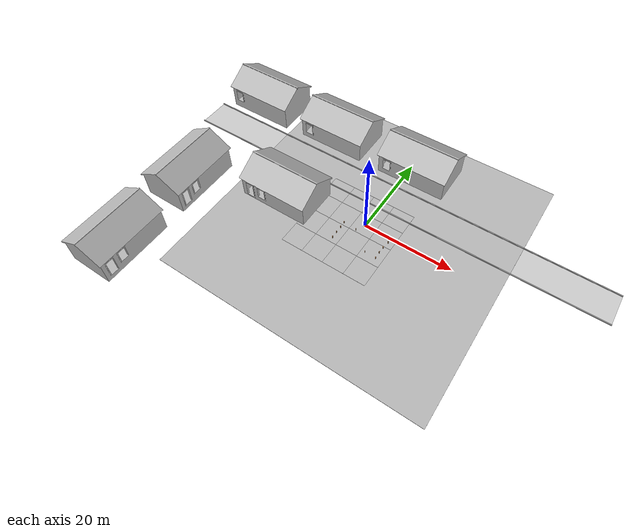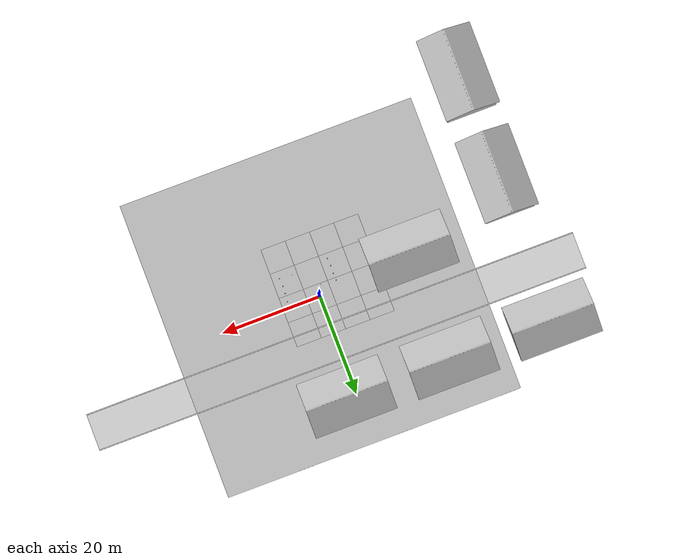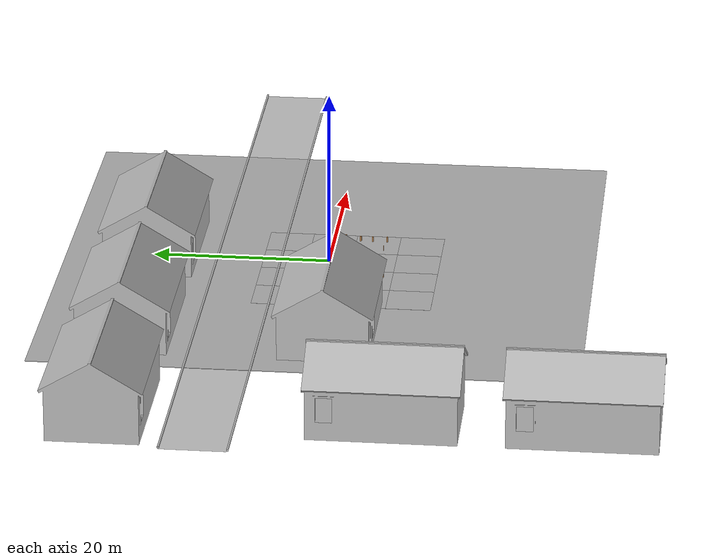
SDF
<sdf version="1.6">
 <world name="default">
  <light type="directional" name="sun">
   <pose>0.0 0.0 1000 -0.35 -0.5 0</pose>
   <diffuse>0.8 0.8 0.8 1</diffuse>
   <specular>0.2 0.2 0.2 1</specular>
   <attenuation>
    <range>1000</range>
    <constant>0.9</constant>
    <linear>0.01</linear>
    <quadratic>0.001</quadratic>
   </attenuation>
   <direction>-0.5 0.1 -0.9</direction>
  </light>
  <light type="spot" name="spot1">
   <pose>0 10 9 -0.1 0 0</pose>
   <diffuse>1 0.8431372549019608 0.4588235294117647 1</diffuse>
   <specular>.2 .2 .2 1</specular>
   <attenuation>
    <range>20</range>
    <linear>0.01</linear>
    <constant>0.2</constant>
    <quadratic>0.0</quadratic>
   </attenuation>
   <direction>0 0 -1</direction>
   <spot><inner_angle>0.11</inner_angle><outer_angle>20</outer_angle><falloff>40</falloff></spot>
   <cast_shadows>false</cast_shadows>
  </light>
  <light type="spot" name="spot2">
   <pose>-20 10 9 -0.1 0 0</pose>
   <diffuse>1 0.8431372549019608 0.4588235294117647 1</diffuse>
   <specular>.2 .2 .2 1</specular>
   <attenuation>
    <range>20</range>
    <linear>0.01</linear>
    <constant>0.2</constant>
    <quadratic>0.0</quadratic>
   </attenuation>
   <direction>0 0 -1</direction>
   <spot><inner_angle>0.11</inner_angle><outer_angle>20</outer_angle><falloff>40</falloff></spot>
   <cast_shadows>false</cast_shadows>
  </light>
  <light type="spot" name="spot3">
   <pose>-40 10 9 -0.1 0 0</pose>
   <diffuse>1 0.8431372549019608 0.4588235294117647 1</diffuse>
   <specular>.2 .2 .2 1</specular>
   <attenuation>
    <range>20</range>
    <linear>0.01</linear>
    <constant>0.2</constant>
    <quadratic>0.0</quadratic>
   </attenuation>
   <direction>0 0 -1</direction>
   <spot><inner_angle>0.11</inner_angle><outer_angle>20</outer_angle><falloff>40</falloff></spot>
   <cast_shadows>false</cast_shadows>
  </light>
  <gravity>0 0 -9.8</gravity>
  <magnetic_field>6e-06 2.3e-05 -4.2e-05</magnetic_field>
  <atmosphere type="adiabatic"/>
  <physics name="default_physics" default="0" type="ode">
   <dart><collision_detector>bullet</collision_detector></dart>
   <max_step_size>0.005</max_step_size>
   <real_time_factor>1</real_time_factor>
   <real_time_update_rate>200</real_time_update_rate>
  </physics>
  <scene>
   <ambient>0.9 0.9 0.9 1</ambient>
   <sky><clouds><speed>8</speed></clouds></sky>
   <grid>false</grid>
   <background>0.7 0.7 0.7 1</background>
   <shadows>1</shadows>
  </scene>
  <spherical_coordinates>
   <surface_model>EARTH_WGS84</surface_model>
   <latitude_deg>0</latitude_deg>
   <longitude_deg>0</longitude_deg>
   <elevation>0</elevation>
   <heading_deg>0</heading_deg>
  </spherical_coordinates>
  <include><uri>model://runway</uri><pose>0 9.15 0.05 0 0 1.571428571</pose><static>true</static></include>
  <include>
   <uri>model://my_ground_plane</uri>
   <pose>0 0 0.03 0 0 0</pose>
   <name>ground_00</name>
   <static>true</static>
  </include>
  <include>
   <uri>model://my_ground_plane</uri>
   <pose>-5 0 0.03 0 0 0</pose>
   <name>ground_01</name>
   <static>true</static>
  </include>
  <include>
   <uri>model://my_ground_plane</uri>
   <pose>0 -5 0.03 0 0 0</pose>
   <name>ground_02</name>
   <static>true</static>
  </include>
  <include>
   <uri>model://my_ground_plane</uri>
   <pose>5 0 0.03 0 0 0</pose>
   <name>ground_03</name>
   <static>true</static>
  </include>
  <include>
   <uri>model://my_ground_plane</uri>
   <pose>0 5 0.03 0 0 0</pose>
   <name>ground_04</name>
   <static>true</static>
  </include>
  <include>
   <uri>model://my_ground_plane</uri>
   <pose>-5 -5 0.03 0 0 0</pose>
   <name>ground_05</name>
   <static>true</static>
  </include>
  <include>
   <uri>model://my_ground_plane</uri>
   <pose>5 -5 0.03 0 0 0</pose>
   <name>ground_06</name>
   <static>true</static>
  </include>
  <include>
   <uri>model://my_ground_plane</uri>
   <pose>-10 0 0.03 0 0 0</pose>
   <name>ground_07</name>
   <static>true</static>
  </include>
  <include>
   <uri>model://my_ground_plane</uri>
   <pose>5 5 0.03 0 0 0</pose>
   <name>ground_08</name>
   <static>true</static>
  </include>
  <include>
   <uri>model://my_ground_plane</uri>
   <pose>-10 5 0.03 0 0 0</pose>
   <name>ground_09</name>
   <static>true</static>
  </include>
  <include>
   <uri>model://my_ground_plane</uri>
   <pose>-5 5 0.03 0 0 0</pose>
   <name>ground_10</name>
   <static>true</static>
  </include>
  <include>
   <uri>model://my_ground_plane</uri>
   <pose>-10 -10 0.03 0 0 0</pose>
   <name>ground_11</name>
   <static>true</static>
  </include>
  <include>
   <uri>model://my_ground_plane</uri>
   <pose>-5 -10 0.03 0 0 0</pose>
   <name>ground_12</name>
   <static>true</static>
  </include>
  <include>
   <uri>model://my_ground_plane</uri>
   <pose>0 -10 0.03 0 0 0</pose>
   <name>ground_13</name>
   <static>true</static>
  </include>
  <include>
   <uri>model://my_ground_plane</uri>
   <pose>5 -10 0.03 0 0 0</pose>
   <name>ground_14</name>
   <static>true</static>
  </include>
  <include>
   <uri>model://my_ground_plane</uri>
   <pose>-10 -5 0.03 0 0 0</pose>
   <name>ground_15</name>
   <static>true</static>
  </include>
  <include><uri>model://my_grass_plane</uri><pose>0 0 -0.05 0 0 0</pose><static>true</static></include>
  <include>
   <uri>model://small_peg</uri>
   <pose>3.474487 -5.820211 0 0 0 0</pose>
   <name>small_peg_02</name>
   <static>true</static>
  </include>
  <include>
   <uri>model://small_peg</uri>
   <pose>-1.042011 -2.181731 0 0 0 0</pose>
   <name>small_peg_01</name>
   <static>true</static>
  </include>
  <include>
   <uri>model://peg</uri>
   <pose>6.220254 -1.292501 0 0 0 0</pose>
   <name>peg_01</name>
   <static>true</static>
  </include>
  <include>
   <uri>model://peg</uri>
   <pose>-4.078598 -1.934470 0 0 0 0</pose>
   <name>peg_02</name>
   <static>true</static>
  </include>
  <include>
   <uri>model://peg</uri>
   <pose>-4.033242 -3.331391 0 0 0 0</pose>
   <name>peg_03</name>
   <static>true</static>
  </include>
  <include>
   <uri>model://peg</uri>
   <pose>6.010706 -2.987494 0 0 0 0</pose>
   <name>peg_04</name>
   <static>true</static>
  </include>
  <include>
   <uri>model://peg</uri>
   <pose>5.974026 -4.387251 0 0 0 0</pose>
   <name>peg_05</name>
   <static>true</static>
  </include>
  <include>
   <uri>model://peg</uri>
   <pose>-4.092475 -4.913312 0 0 0 0</pose>
   <name>peg_06</name>
   <static>true</static>
  </include>
  <include>
   <uri>model://peg</uri>
   <pose>-4.004834 -6.444205 0 0 0 0</pose>
   <name>peg_07</name>
   <static>true</static>
  </include>
  <include>
   <uri>model://peg</uri>
   <pose>6.035331 -6.000935 0 0 0 0</pose>
   <name>peg_08</name>
   <static>true</static>
  </include>
  <include>
   <uri>model://guide</uri>
   <pose>0 5.5 0.1 0 0 1.571428571</pose>
   <name>guide_01</name>
   <static>true</static>
  </include>
  <include>
   <uri>model://guide</uri>
   <pose>0 12.75 0.1 0 0 1.571428571</pose>
   <name>guide_02</name>
   <static>true</static>
  </include>
  <include>
   <uri>model://barn_collision</uri>
   <pose>-19 -2 0.3 0 0 0</pose>
   <name>barn_00</name>
   <static>true</static>
  </include>
  <include>
   <uri>model://barn_collision</uri>
   <pose>-19 20 0.3 0 0 3.1427</pose>
   <name>barn_01</name>
   <static>true</static>
  </include>
  <include>
   <uri>model://barn_collision</uri>
   <pose>-40 20 0.3 0 0 3.1427</pose>
   <name>barn_02</name>
   <static>true</static>
  </include>
  <include>
   <uri>model://barn_collision</uri>
   <pose>2 20 0.3 0 0 3.1427</pose>
   <name>barn_03</name>
   <static>true</static>
  </include>
  <include>
   <uri>model://barn_collision</uri>
   <pose>-40 -10 0.3 0 0 1.571428571</pose>
   <name>barn_04</name>
   <static>true</static>
  </include>
  <include>
   <uri>model://barn_collision</uri>
   <pose>-40 -31 0.3 0 0 1.571428571</pose>
   <name>barn_05</name>
   <static>true</static>
  </include>
 </world>
</sdf>

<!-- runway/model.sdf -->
<sdf version="1.4">
  <model name="ground_plane">
    <static>true</static>
    <link name="link">
      <pose>0 0 0 0 0 0</pose>
      <collision name="collision">
        <geometry>
          <plane>
            <normal>0 0 1</normal>
            <size>7.1 50</size>
          </plane>
        </geometry>
        <surface>
          <friction>
            <ode>
              <mu>1</mu>
              <mu2>1</mu2>
            </ode>
          </friction>
        </surface>
      </collision>

      <visual name="runway">
        <cast_shadows>false</cast_shadows>
        <geometry>
          <plane>
            <normal>0 0 1</normal>
            <size>7.1 100</size>
          </plane>
        </geometry>
        <material>
          <script>
            <uri>file://media/materials/scripts/gazebo.material</uri>
            <name>Gazebo/Motorway</name>
          </script>
        </material>
      </visual>
    </link>
  </model>
</sdf>

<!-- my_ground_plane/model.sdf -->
<sdf version="1.4">
   <model name="my_ground_plane">
      <static>true</static>
      <link name="link">
         <collision name="collision">
            <geometry>
               <plane>
                  <normal>0 0 1</normal>
                  <size>5 5</size>
               </plane>
            </geometry>
            <surface>
               <friction>
                  <ode>
                     <mu>100</mu>
                     <mu2>50</mu2>
                  </ode>
               </friction>
            </surface>
         </collision>
         <visual name="visual">
            <cast_shadows>false</cast_shadows>
            <geometry>
               <plane>
                  <normal>0 0 1</normal>
                  <size>5 5</size>
               </plane>
            </geometry>
            <material>
               <script>
                  <uri>model://my_ground_plane/materials/scripts</uri>
                  <uri>model://my_ground_plane/materials/textures/</uri>
                  <name>MyGroundPlane/Image</name>
               </script>
            </material>
         </visual>
      </link>
   </model>
</sdf>

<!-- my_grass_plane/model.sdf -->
<sdf version="1.4">
   <model name="my_grass_plane">
      <static>true</static>
      <link name="link">
         <collision name="collision">
            <geometry>
               <plane>
                  <normal>0 0 1</normal>
                  <size>60 60</size>
               </plane>
            </geometry>
            <surface>
               <friction>
                  <ode>
                     <mu>100</mu>
                     <mu2>50</mu2>
                  </ode>
               </friction>
            </surface>
         </collision>
         <visual name="visual">
            <cast_shadows>false</cast_shadows>
            <geometry>
               <plane>
                  <normal>0 0 1</normal>
                  <size>60 60</size>
               </plane>
            </geometry>
            <material>
               <script>
                  <uri>model://my_grass_plane/materials/scripts</uri>
                  <uri>model://my_grass_plane/materials/textures/</uri>
                  <name>MyGrassPlane/Image</name>
               </script>
            </material>
         </visual>
      </link>
   </model>
</sdf>

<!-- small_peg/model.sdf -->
<sdf version="1.5">
  <model name="small_peg">
    <link name="link">
      <pose>0 0 0.35 0 0 0</pose>
      <inertial>
        <mass>0.0175</mass>
        <inertia>
          <ixx>9.749231770833334e-06</ixx>
          <ixy>0</ixy>
          <ixz>0</ixz>
          <iyy>9.749231770833334e-06</iyy>
          <iyz>0</iyz>
          <izz>8.317968750000001e-07</izz>
        </inertia>
      </inertial>

      <collision name="collision">
        <geometry>
          <cylinder>
            <radius> 0.05 </radius>
            <length> 0.6 </length>
          </cylinder>
        </geometry>
        <surface>
          <contact>
            <!-- Red Pine coefficients for longitudinal axis of the wood
                 according to:
                 http://www.fpl.fs.fed.us/documnts/fplgtr/fplgtr113/ch04.pdf -->
            <poissons_ratio>0.347</poissons_ratio>
            <elastic_modulus>8.8e+09</elastic_modulus>
            <ode>
              <kp>100000</kp>
              <kd>100</kd>
              <max_vel>100.0</max_vel>
              <min_depth>0.001</min_depth>
            </ode>
          </contact>
          <friction>
            <torsional>
              <coefficient>1.0</coefficient>
              <use_patch_radius>0</use_patch_radius>
              <surface_radius>0.01</surface_radius>
            </torsional>
          </friction>
        </surface>
      </collision>

      <visual name="visual">
        <geometry>
          <cylinder>
            <radius> 0.05 </radius>
            <length> 0.6 </length>
          </cylinder>
        </geometry>
        <material>
          <script>
            <uri>file://media/materials/scripts/gazebo.material</uri>
            <name>Gazebo/Wood</name>
          </script>
        </material>
      </visual>

    </link>
  </model>
</sdf>

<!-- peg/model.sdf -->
<sdf version="1.5">
  <model name="peg">
    <link name="link">
      <pose>0 0 0.35 0 0 0</pose>
      <inertial>
        <mass>0.0175</mass>
        <inertia>
          <ixx>9.749231770833334e-06</ixx>
          <ixy>0</ixy>
          <ixz>0</ixz>
          <iyy>9.749231770833334e-06</iyy>
          <iyz>0</iyz>
          <izz>8.317968750000001e-07</izz>
        </inertia>
      </inertial>

      <collision name="collision">
        <geometry>
          <cylinder>
            <radius> 0.1 </radius>
            <length> 0.6 </length>
          </cylinder>
        </geometry>
        <surface>
          <contact>
            <!-- Red Pine coefficients for longitudinal axis of the wood
                 according to:
                 http://www.fpl.fs.fed.us/documnts/fplgtr/fplgtr113/ch04.pdf -->
            <poissons_ratio>0.347</poissons_ratio>
            <elastic_modulus>8.8e+09</elastic_modulus>
            <ode>
              <kp>100000</kp>
              <kd>100</kd>
              <max_vel>100.0</max_vel>
              <min_depth>0.001</min_depth>
            </ode>
          </contact>
          <friction>
            <torsional>
              <coefficient>1.0</coefficient>
              <use_patch_radius>0</use_patch_radius>
              <surface_radius>0.01</surface_radius>
            </torsional>
          </friction>
        </surface>
      </collision>

      <visual name="visual">
        <geometry>
          <cylinder>
            <radius> 0.1 </radius>
            <length> 0.6 </length>
          </cylinder>
        </geometry>
        <material>
          <script>
            <uri>file://media/materials/scripts/gazebo.material</uri>
            <name>Gazebo/Wood</name>
          </script>
        </material>
      </visual>

    </link>
  </model>
</sdf>

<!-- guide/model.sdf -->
<sdf version="1.4">
  <model name="guide">
    <link name="link">
      <pose>0 0 0 0 0 0</pose>
      <inertial>
        <mass>2.0</mass>
        <inertia>
          <ixx>1</ixx>
          <ixy>0</ixy>
          <ixz>0</ixz>
          <iyy>1</iyy>
          <iyz>0</iyz>
          <izz>1</izz>
        </inertia>
      </inertial>

      <collision name="collision">
        <geometry>
          <box>
            <size>0.2 100.0 0.2</size>
          </box>
        </geometry>
        <surface>
          <contact>
            <!-- Red Pine coefficients for longitudinal axis of the wood
                 according to:
                 http://www.fpl.fs.fed.us/documnts/fplgtr/fplgtr113/ch04.pdf -->
            <poissons_ratio>0.347</poissons_ratio>
            <elastic_modulus>8.8e+09</elastic_modulus>
            <ode>
              <kp>100000</kp>
              <kd>100</kd>
              <max_vel>100.0</max_vel>
              <min_depth>0.001</min_depth>
            </ode>
          </contact>
          <friction>
            <torsional>
              <coefficient>1.0</coefficient>
              <use_patch_radius>0</use_patch_radius>
              <surface_radius>0.01</surface_radius>
            </torsional>
          </friction>
        </surface>
      </collision>

      <visual name="visual">
        <geometry>
          <box>
            <size>0.2 100.0 0.2</size>
          </box>
        </geometry>
        <material>
          <script>
            <uri>file://media/materials/scripts/gazebo.material</uri>
            <name>Gazebo/Sidewalk</name>
          </script>
        </material>
      </visual>
    </link>
  </model>
</sdf>

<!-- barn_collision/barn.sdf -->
<sdf version="1.5">
  <model name="barn">
    <link name="link">
      <inertial>
        <pose>0 0 0.06 0 0 0</pose>
        <mass>0.390</mass>
        <inertia>
          <ixx>0.00055575</ixx>
          <ixy>0</ixy>
          <ixz>0</ixz>
          <iyy>0.00055575</iyy>
          <iyz>0</iyz>
          <izz>0.0001755</izz>
        </inertia>
      </inertial>
      <collision name="collision">
        <pose>0 0 0 0 0 0</pose>
        <geometry>
          <mesh>
            <uri>model://barn/meshes/barn_stone_large.dae</uri>
            <size>0.1 0.1 0.1</size>
          </mesh>
        </geometry>
        <surface>
          <friction>
            <ode>
              <mu>1.0</mu>
              <mu2>1.0</mu2>
            </ode>
          </friction>
          <contact>
            <ode>
              <kp>10000000.0</kp>
              <kd>1.0</kd>
              <min_depth>0.001</min_depth>
              <max_vel>0.1</max_vel>
            </ode>
          </contact>
        </surface>
      </collision>
      <visual name="visual">
        <pose>0 0 0 0 0 0</pose>
        <geometry>
          <mesh>
            <uri>model://barn/meshes/barn_stone_large.dae</uri>
            <size>0.1 0.1 0.1</size>
          </mesh>
        </geometry>
      </visual>
    </link>
  </model>
</sdf>
